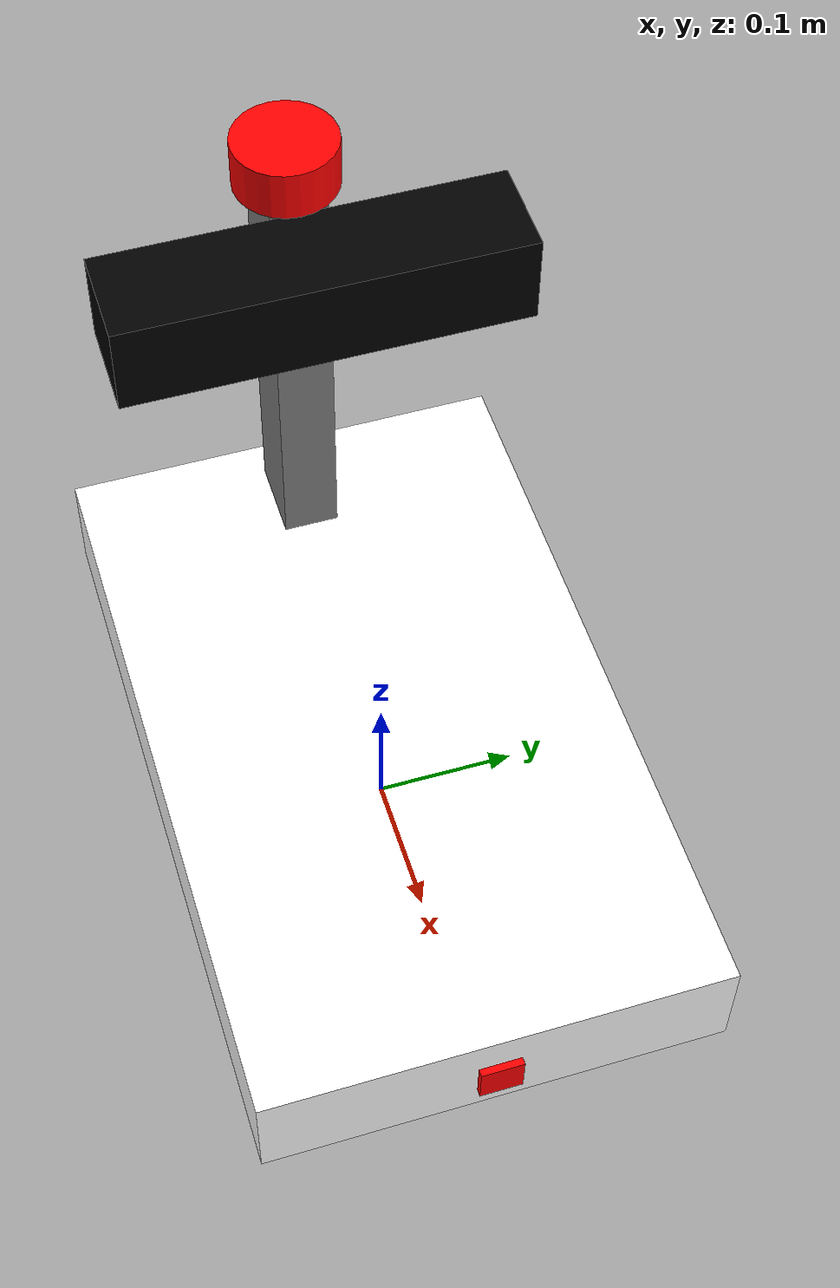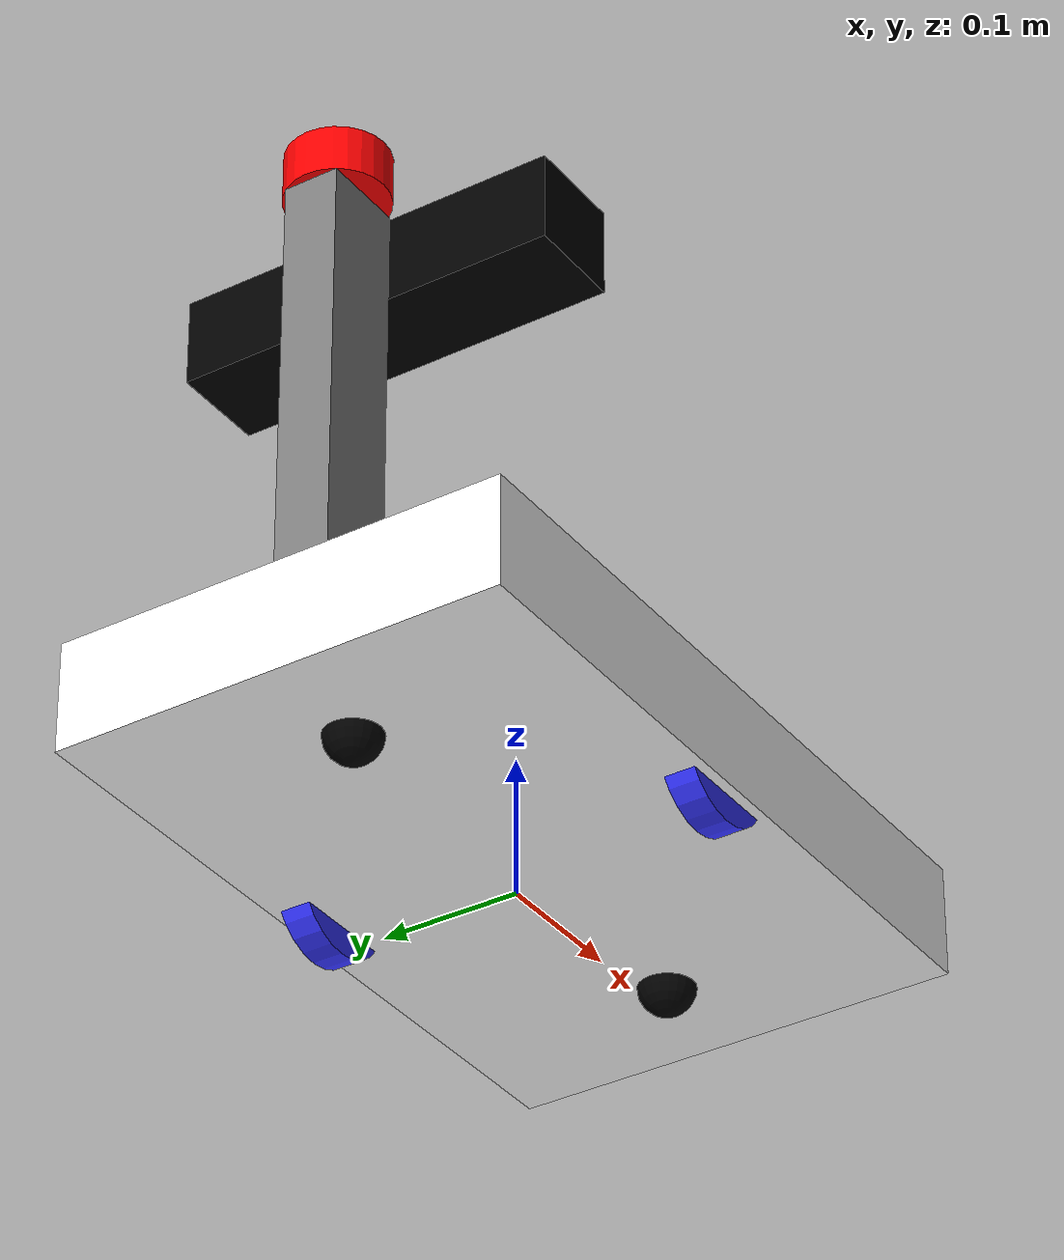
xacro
<?xml version="1.0"?>
<robot xmlns:xacro="http://www.ros.org/wiki/xacro" name="robot">

    <xacro:arg name="sim_mode" default="false" />

    <xacro:include filename="robot_core.xacro"/>
    <xacro:include filename="$(find my_bot)/description/ros2_control.xacro" />
    <xacro:include filename="lidar.xacro"/>
    <xacro:include filename="camera.xacro"/>
    <xacro:include filename="imu.xacro"/>

</robot>

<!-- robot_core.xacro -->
<robot xmlns:xacro="http://www.ros.org/wiki/xacro">

    <xacro:include filename="inertial_macros.xacro"/>

    <material name="white">
        <color rgba="1 1 1 1"/>
    </material>

    <material name="orange">
        <color rgba="1 0.3 0.1 1"/>
    </material>

    <material name="blue">
        <color rgba="0.2 0.2 1 1"/>
    </material>

    <material name="black">
        <color rgba="0 0 0 1"/>
    </material>

    <material name="red">
        <color rgba="1 0 0 1"/>
    </material>

    <material name="grey">
        <color rgba="0.5 0.5 0.5 1"/>
    </material>

    <!-- Base link -->

    <link name="base_link"/>

    <!-- Base footprint -->

    <joint name="base_footprint_joint" type="fixed">
        <parent link="base_link"/>
        <child link="base_footprint"/>
        <origin xyz="0 0 0" rpy="0 0 0"/>
    </joint>

    <link name="base_footprint"/>

    <!-- Chassis - srodek podwozia lezy nad osia kol, 0.060 m nad podlozem (spod 0.020, gora 0.100) -->

    <joint name="chassis_joint" type="fixed">
        <parent link="base_link"/>
        <child link="chassis"/>
        <origin xyz="0 0 0.060"/>
    </joint>

    <link name="chassis">
        <visual>
            <geometry>
                <box size="0.530 0.326 0.080"/>
            </geometry>
            <material name="white"/>
        </visual>

        <collision>
            <geometry>
                <box size="0.530 0.326 0.080"/>
            </geometry>
        </collision>

        <!-- 4.85 kg - podwozie z akumulatorem, RPi, elektronika (6 kg calosc minus pozostale elementy) -->
        <xacro:inertial_box mass="4.85" x="0.530" y="0.326" z="0.080">
            <origin xyz="0 0 0" rpy="0 0 0"/>
        </xacro:inertial_box>
    </link>

    <!-- Left wheel -->

    <joint name="left_wheel_joint" type="continuous">
        <parent link="base_link"/>
        <child link="left_wheel"/>
        <origin xyz="0 0.1445 0.045" rpy="-1.5708 0 0"/>
        <axis xyz="0 0 1"/>
    </joint>

    <link name="left_wheel">
        <visual>
            <geometry>
                <cylinder radius="0.045" length="0.022"/>
            </geometry>
            <material name="blue"/>
        </visual>

        <collision>
            <geometry>
                <sphere radius="0.045"/>
            </geometry>
        </collision>

        <xacro:inertial_cylinder mass="0.15" length="0.022" radius="0.045">
            <origin xyz="0 0 0" rpy="0 0 0"/>
        </xacro:inertial_cylinder>
    </link>

    <gazebo reference="left_wheel">
        <mu1>1.0</mu1>
        <mu2>1.0</mu2>
    </gazebo>

    <!-- Right wheel -->

    <joint name="right_wheel_joint" type="continuous">
        <parent link="base_link"/>
        <child link="right_wheel"/>
        <origin xyz="0 -0.1445 0.045" rpy="1.5708 0 0"/>
        <axis xyz="0 0 -1"/>
    </joint>

    <link name="right_wheel">
        <visual>
            <geometry>
                <cylinder radius="0.045" length="0.022"/>
            </geometry>
            <material name="blue"/>
        </visual>

        <collision>
            <geometry>
                <sphere radius="0.045"/>
            </geometry>
        </collision>

        <xacro:inertial_cylinder mass="0.15" length="0.022" radius="0.045">
            <origin xyz="0 0 0" rpy="0 0 0"/>
        </xacro:inertial_cylinder>
    </link>

    <gazebo reference="right_wheel">
        <mu1>1.0</mu1>
        <mu2>1.0</mu2>
    </gazebo>

    <joint name="front_caster_joint" type="fixed">
        <parent link="base_link"/>
        <child link="front_caster"/>
        <origin xyz="0.180 0 0.0205"/>
    </joint>

    <link name="front_caster">
        <visual>
            <geometry>
                <sphere radius="0.020"/>
            </geometry>
            <material name="black"/>
        </visual>

        <collision>
            <geometry>
                <sphere radius="0.020"/>
            </geometry>
        </collision>

        <xacro:inertial_sphere mass="0.05" radius="0.020">
            <origin xyz="0 0 0" rpy="0 0 0"/>
        </xacro:inertial_sphere>
    </link>

    <gazebo reference="front_caster">
        <mu1>0.001</mu1>
        <mu2>0.001</mu2>
    </gazebo>

    <joint name="rear_caster_joint" type="fixed">
        <parent link="base_link"/>
        <child link="rear_caster"/>
        <origin xyz="-0.180 0 0.0205"/>
    </joint>

    <link name="rear_caster">
        <visual>
            <geometry>
                <sphere radius="0.020"/>
            </geometry>
            <material name="black"/>
        </visual>

        <collision>
            <geometry>
                <sphere radius="0.020"/>
            </geometry>
        </collision>

        <xacro:inertial_sphere mass="0.05" radius="0.020">
            <origin xyz="0 0 0" rpy="0 0 0"/>
        </xacro:inertial_sphere>
    </link>

    <gazebo reference="rear_caster">
        <mu1>0.001</mu1>
        <mu2>0.001</mu2>
    </gazebo>

    <!--
    Maszt na tyle robota - 60 mm (x) x 40 mm (y), dlugosc 0.360 m.
    Dol 0.055 m (schowany w podwoziu), gora 0.415 m. Srodek x = -0.210.
    Na szczycie stoi lidar, nizej Kinect.
    -->

    <joint name="mast_joint" type="fixed">
        <parent link="base_link"/>
        <child link="mast"/>
        <origin xyz="-0.210 0 0.235"/>
    </joint>

    <link name="mast">
        <visual>
            <geometry>
                <box size="0.060 0.040 0.360"/>
            </geometry>
            <material name="grey"/>
        </visual>

        <collision>
            <geometry>
                <box size="0.060 0.040 0.360"/>
            </geometry>
        </collision>

        <xacro:inertial_box mass="0.15" x="0.060" y="0.040" z="0.360">
            <origin xyz="0 0 0" rpy="0 0 0"/>
        </xacro:inertial_box>
    </link>

</robot>

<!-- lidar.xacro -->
<robot xmlns:xacro="http://www.ros.org/wiki/xacro">

    <joint name="laser_joint" type="fixed">
        <parent link="base_link"/>
        <child link="laser_frame"/>
        <origin xyz="-0.210 0 0.450" rpy="0 0 3.14159"/>
    </joint>

    <link name="laser_frame">

        <visual>
            <origin xyz="0 0 -0.0175" rpy="0 0 0"/>
            <geometry>
                <cylinder radius="0.036" length="0.035"/>
            </geometry>
            <material name="red"/>
        </visual>

        <collision>
            <origin xyz="0 0 -0.0175" rpy="0 0 0"/>
            <geometry>
                <cylinder radius="0.036" length="0.035"/>
            </geometry>
        </collision>

        <xacro:inertial_cylinder mass="0.17" length="0.035" radius="0.036">
            <origin xyz="0 0 -0.0175" rpy="0 0 0"/>
        </xacro:inertial_cylinder>

    </link>

    <gazebo reference="laser_frame">

        <sensor name="laser" type="gpu_lidar">

            <gz_frame_id>laser_frame</gz_frame_id>

            <pose>0 0 0 0 0 0</pose>

            <update_rate>5.5</update_rate>

            <topic>scan</topic>

            <ray>
                <scan>
                    <horizontal>
                        <samples>360</samples>
                        <resolution>1</resolution>
                        <min_angle>-3.14159</min_angle>
                        <max_angle>3.14159</max_angle>
                    </horizontal>
                </scan>

                <range>
                    <min>0.15</min>
                    <max>12.0</max>
                    <resolution>0.01</resolution>
                </range>

                <noise>
                    <type>gaussian</type>
                    <mean>0.0</mean>
                    <stddev>0.01</stddev>
                </noise>
            </ray>

            <always_on>true</always_on>
            <visualize>false</visualize>

        </sensor>

    </gazebo>

</robot>

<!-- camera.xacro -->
<robot xmlns:xacro="http://www.ros.org/wiki/xacro">

    <!-- ===== Raspberry Pi Camera 3 na przodzie podwozia (przod = x +0.265), wysokosc srodka podwozia ===== -->

    <joint name="camera_joint" type="fixed">
        <parent link="base_link"/>
        <child link="camera_link"/>
        <!-- Zmierzone linijka 2026-11-11 (+-1 cm) - obiektyw 26.5 cm przed osia kol, 5.5 cm nad podloga, na srodku -->
        <origin xyz="0.265 0 0.055" rpy="0 0 0"/>
    </joint>

    <link name="camera_link">
        <visual>
            <geometry>
                <box size="0.010 0.03 0.03"/>
            </geometry>
            <material name="red"/>
        </visual>
    </link>

    <joint name="camera_optical_joint" type="fixed">
        <parent link="camera_link"/>
        <child link="camera_link_optical"/>
        <origin xyz="0 0 0" rpy="${-pi/2} 0 ${-pi/2}"/>
    </joint>

    <link name="camera_link_optical"></link>

    <gazebo reference="camera_link">
        <sensor name="camera" type="camera">
            <pose>0 0 0 0 0 0</pose>
            <visualize>false</visualize>
            <update_rate>10</update_rate>
            <topic>camera/image_raw</topic>
            <camera>
                <!-- Pi Camera 3 (standard) - ok. 66 stopni poziomo = 1.152 rad -->
                <horizontal_fov>1.152</horizontal_fov>
                <image>
                    <format>R8G8B8</format>
                    <width>640</width>
                    <height>480</height>
                </image>
                <clip>
                    <near>0.05</near>
                    <far>8.0</far>
                </clip>
            </camera>
            <gz_frame_id>camera_link_optical</gz_frame_id>
        </sensor>
    </gazebo>

    <!-- ===== Kinect na maszcie, pod lidarem, przed masztem =====
    Tylna scianka Kinecta przy przedniej scianie masztu (x = -0.180), srodek x = -0.145, z = 0.38. -->

    <joint name="kinect_joint" type="fixed">
        <parent link="base_link"/>
        <child link="kinect_link"/>
        <origin xyz="-0.145 0 0.380" rpy="0 0 0"/>
    </joint>

    <link name="kinect_link">
        <visual>
            <geometry>
                <box size="0.070 0.280 0.065"/>
            </geometry>
            <material name="black"/>
        </visual>

        <collision>
            <geometry>
                <box size="0.070 0.280 0.065"/>
            </geometry>
        </collision>

        <xacro:inertial_box mass="0.43" x="0.070" y="0.280" z="0.065">
            <origin xyz="0 0 0" rpy="0 0 0"/>
        </xacro:inertial_box>
    </link>

    <joint name="kinect_rgb_joint" type="fixed">
        <parent link="kinect_link"/>
        <child link="kinect_rgb"/>
        <origin xyz="0.035 0 0" rpy="${-pi/2} 0 ${-pi/2}"/>
    </joint>

    <link name="kinect_rgb"></link>

    <joint name="kinect_depth_joint" type="fixed">
        <parent link="kinect_rgb"/>
        <child link="kinect_depth"/>
        <origin xyz="0.025 0 0" rpy="0 0 0"/>
    </joint>

    <link name="kinect_depth"></link>

</robot>

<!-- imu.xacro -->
<robot xmlns:xacro="http://www.ros.org/wiki/xacro">

    <joint name="imu_joint" type="fixed">
        <parent link="base_link"/>
        <child link="imu_link"/>
        <origin xyz="0 0 0.05" rpy="0 0 0"/>
    </joint>

    <link name="imu_link">
        <visual>
            <geometry>
                <box size="0.02 0.02 0.005"/>
            </geometry>
            <material name="black"/>
        </visual>
        <collision>
            <geometry>
                <box size="0.02 0.02 0.005"/>
            </geometry>
        </collision>
        <xacro:inertial_box mass="0.01" x="0.02" y="0.02" z="0.005">
            <origin xyz="0 0 0" rpy="0 0 0"/>
        </xacro:inertial_box>
    </link>

    <gazebo reference="imu_link">
        <material>Gazebo/Black</material>
        <sensor name="imu_sensor" type="imu">
            <always_on>true</always_on>
            <update_rate>100</update_rate>
            <visualize>false</visualize>
            <topic>imu/data</topic>
            <gz_frame_id>imu_link</gz_frame_id>
        </sensor>
    </gazebo>

</robot>
